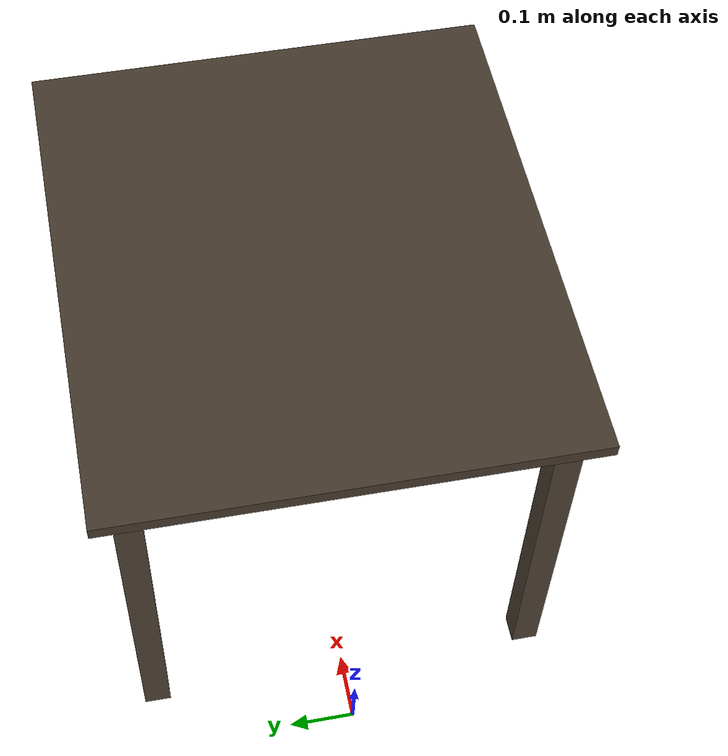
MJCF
<!-- 桌面 + 桌腿 -->
<mujoco model="table">
  <asset>
    <texture name="table_tex" type="2d" builtin="checker" mark="edge" rgb1="0.3 0.25 0.2" rgb2="0.25 0.2 0.15" markrgb="0.5 0.5 0.5" width="300" height="300"/>
    <material name="table_mat" texture="table_tex" texuniform="true" texrepeat="3 3" reflectance="0.0"/>
  </asset>
  <worldbody>
    <body name="table_top" pos="0.45 0 0.6">
      <geom name="table_surface" type="box" size="0.4 0.35 0.01" pos="0 0 0.01" material="table_mat" friction="0.8 0.6 0.3"/>
      <geom name="table_leg1" type="box" size="0.02 0.02 0.3" pos="-0.35 0.3 -0.3" rgba="0.3 0.25 0.2 1"/>
      <geom name="table_leg2" type="box" size="0.02 0.02 0.3" pos="0.35 0.3 -0.3" rgba="0.3 0.25 0.2 1"/>
      <geom name="table_leg3" type="box" size="0.02 0.02 0.3" pos="-0.35 -0.3 -0.3" rgba="0.3 0.25 0.2 1"/>
      <geom name="table_leg4" type="box" size="0.02 0.02 0.3" pos="0.35 -0.3 -0.3" rgba="0.3 0.25 0.2 1"/>
    </body>
  </worldbody>
</mujoco>
